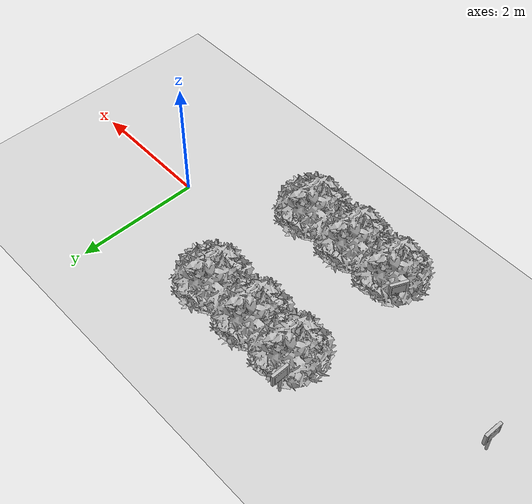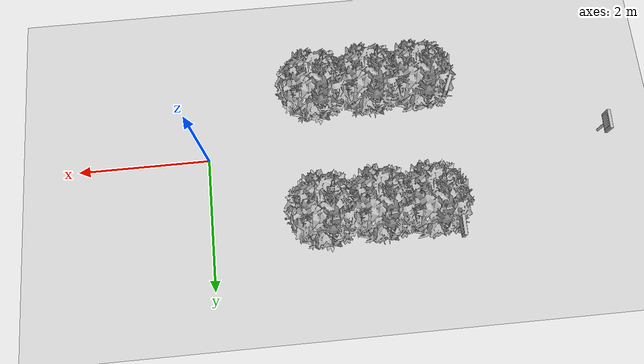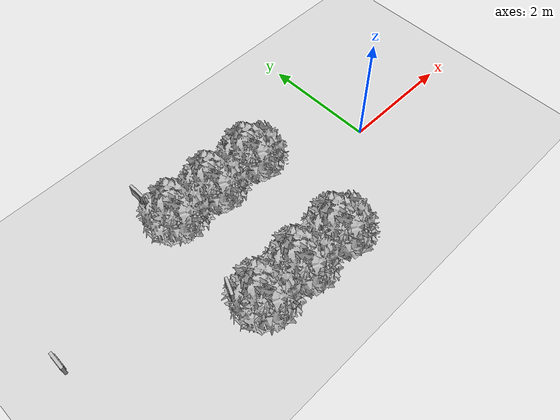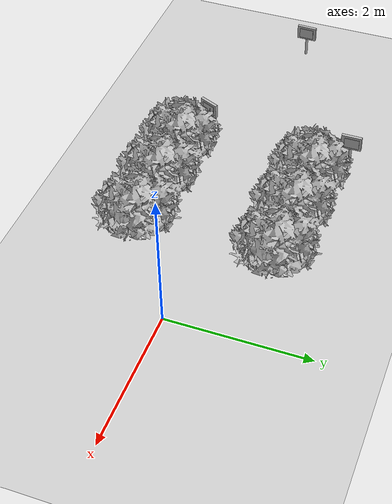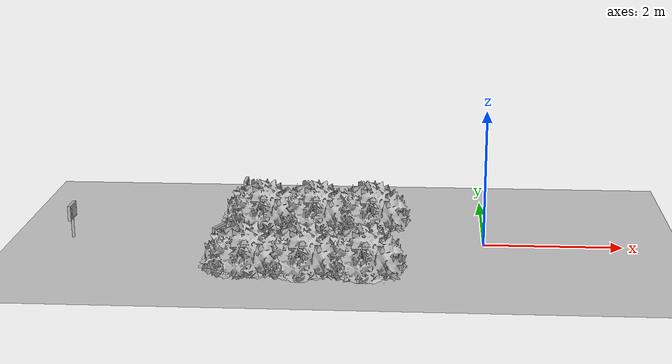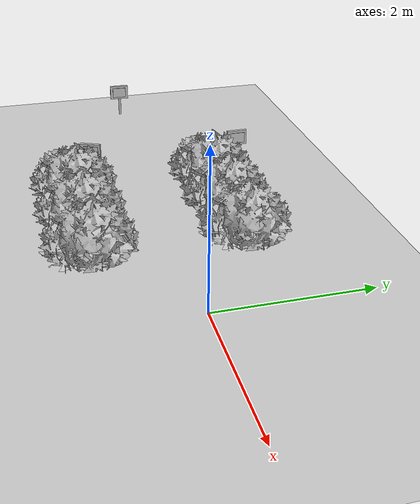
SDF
<sdf version="1.7">
 <world name="default">
  <model name="ground_plane">
   <static>1</static>
   <link name="link">
    <collision name="collision">
     <geometry><plane><normal>0 0 1</normal><size>100 100</size></plane></geometry>
     <surface><friction><ode><mu>100</mu><mu2>50</mu2></ode></friction></surface>
    </collision>
    <visual name="visual">
     <cast_shadows>0</cast_shadows>
     <geometry><plane><normal>0 0 1</normal><size>100 100</size></plane></geometry>
     <material>
      <script><uri>file://media/materials/scripts/gazebo.material</uri><name>Gazebo/Grey</name></script>
     </material>
    </visual>
   </link>
  </model>
  <model name="abbfre_1">
   <link name="link_0">
    <inertial>
     <mass>1</mass>
     <inertia>
      <ixx>0.166667</ixx>
      <ixy>0</ixy>
      <ixz>0</ixz>
      <iyy>0.166667</iyy>
      <iyz>0</iyz>
      <izz>0.166667</izz>
     </inertia>
    </inertial>
    <pose>0 0 -0 1.60917 -0 0</pose>
    <visual name="visual">
     <geometry><mesh><uri>model://abbfre/meshes/arbufres.obj</uri><scale>1 1 1</scale></mesh></geometry>
    </visual>
    <collision name="collision">
     <geometry><mesh><uri>model://abbfre/meshes/arbufres.obj</uri><scale>1 1 1</scale></mesh></geometry>
     <surface>
      <friction>
       <ode><mu>1</mu><mu2>1</mu2><fdir1>0 0 0</fdir1><slip1>0</slip1><slip2>0</slip2></ode>
       <torsional>
        <coefficient>1</coefficient>
        <patch_radius>0</patch_radius>
        <surface_radius>0</surface_radius>
        <use_patch_radius>1</use_patch_radius>
        <ode><slip>0</slip></ode>
       </torsional>
      </friction>
      <bounce><restitution_coefficient>0</restitution_coefficient><threshold>1e+06</threshold></bounce>
      <contact>
       <collide_without_contact>0</collide_without_contact>
       <collide_without_contact_bitmask>1</collide_without_contact_bitmask>
       <collide_bitmask>1</collide_bitmask>
       <ode>
        <soft_cfm>0</soft_cfm>
        <soft_erp>0.2</soft_erp>
        <kp>1e+13</kp>
        <kd>1</kd>
        <max_vel>0.01</max_vel>
        <min_depth>0</min_depth>
       </ode>
       <bullet>
        <split_impulse>1</split_impulse>
        <split_impulse_penetration_threshold>-0.01</split_impulse_penetration_threshold>
        <soft_cfm>0</soft_cfm>
        <soft_erp>0.2</soft_erp>
        <kp>1e+13</kp>
        <kd>1</kd>
       </bullet>
      </contact>
     </surface>
    </collision>
   </link>
   <static>1</static>
   <pose>-2.51808 1.05435 0 0 -0 0</pose>
  </model>
  <model name="abbfre_3">
   <link name="link_0">
    <inertial>
     <mass>1</mass>
     <inertia>
      <ixx>0.166667</ixx>
      <ixy>0</ixy>
      <ixz>0</ixz>
      <iyy>0.166667</iyy>
      <iyz>0</iyz>
      <izz>0.166667</izz>
     </inertia>
    </inertial>
    <pose>0 0 -0 1.60917 -0 0</pose>
    <visual name="visual">
     <geometry><mesh><uri>model://abbfre/meshes/arbufres.obj</uri><scale>1 1 1</scale></mesh></geometry>
    </visual>
    <collision name="collision">
     <geometry><mesh><uri>model://abbfre/meshes/arbufres.obj</uri><scale>1 1 1</scale></mesh></geometry>
     <surface>
      <friction>
       <ode><mu>1</mu><mu2>1</mu2><fdir1>0 0 0</fdir1><slip1>0</slip1><slip2>0</slip2></ode>
       <torsional>
        <coefficient>1</coefficient>
        <patch_radius>0</patch_radius>
        <surface_radius>0</surface_radius>
        <use_patch_radius>1</use_patch_radius>
        <ode><slip>0</slip></ode>
       </torsional>
      </friction>
      <bounce><restitution_coefficient>0</restitution_coefficient><threshold>1e+06</threshold></bounce>
      <contact>
       <collide_without_contact>0</collide_without_contact>
       <collide_without_contact_bitmask>1</collide_without_contact_bitmask>
       <collide_bitmask>1</collide_bitmask>
       <ode>
        <soft_cfm>0</soft_cfm>
        <soft_erp>0.2</soft_erp>
        <kp>1e+13</kp>
        <kd>1</kd>
        <max_vel>0.01</max_vel>
        <min_depth>0</min_depth>
       </ode>
       <bullet>
        <split_impulse>1</split_impulse>
        <split_impulse_penetration_threshold>-0.01</split_impulse_penetration_threshold>
        <soft_cfm>0</soft_cfm>
        <soft_erp>0.2</soft_erp>
        <kp>1e+13</kp>
        <kd>1</kd>
       </bullet>
      </contact>
     </surface>
    </collision>
   </link>
   <static>1</static>
   <pose>-2.52739 -0.955458 0 0 -0 0</pose>
  </model>
  <model name="letrero_riego_1">
   <link name="link_0">
    <inertial>
     <mass>0.0543151</mass>
     <inertia>
      <ixx>4.90351e-06</ixx>
      <ixy>0</ixy>
      <ixz>0</ixz>
      <iyy>4.90351e-06</iyy>
      <iyz>0</iyz>
      <izz>1.12837e-07</izz>
     </inertia>
    </inertial>
    <pose>0.002515 0.005109 0.153562 0 -0 0</pose>
    <visual name="visual">
     <geometry><cylinder><radius>0.0203836</radius><length>0.327243</length></cylinder></geometry>
     <material>
      <lighting>1</lighting>
      <script>
       <uri>model://letrero_riego/madera/scripts</uri>
       <uri>model://letrero_riego/madera/textures</uri>
       <name>textur/madera</name>
      </script>
      <shader type="pixel"/>
      <emissive>0 0 0 1</emissive>
     </material>
    </visual>
    <collision name="collision">
     <geometry><cylinder><radius>0.020384</radius><length>0.327243</length></cylinder></geometry>
     <surface>
      <friction>
       <ode><mu>1</mu><mu2>1</mu2><fdir1>0 0 0</fdir1><slip1>0</slip1><slip2>0</slip2></ode>
       <torsional>
        <coefficient>1</coefficient>
        <patch_radius>0</patch_radius>
        <surface_radius>0</surface_radius>
        <use_patch_radius>1</use_patch_radius>
        <ode><slip>0</slip></ode>
       </torsional>
      </friction>
      <bounce><restitution_coefficient>0</restitution_coefficient><threshold>1e+06</threshold></bounce>
      <contact>
       <collide_without_contact>0</collide_without_contact>
       <collide_without_contact_bitmask>1</collide_without_contact_bitmask>
       <collide_bitmask>1</collide_bitmask>
       <ode>
        <soft_cfm>0</soft_cfm>
        <soft_erp>0.2</soft_erp>
        <kp>1e+13</kp>
        <kd>1</kd>
        <max_vel>0.01</max_vel>
        <min_depth>0</min_depth>
       </ode>
       <bullet>
        <split_impulse>1</split_impulse>
        <split_impulse_penetration_threshold>-0.01</split_impulse_penetration_threshold>
        <soft_cfm>0</soft_cfm>
        <soft_erp>0.2</soft_erp>
        <kp>1e+13</kp>
        <kd>1</kd>
       </bullet>
      </contact>
     </surface>
    </collision>
   </link>
   <link name="link_1">
    <inertial>
     <mass>0.00299633</mass>
     <inertia>
      <ixx>1.27855e-05</ixx>
      <ixy>0</ixy>
      <ixz>0</ixz>
      <iyy>3.42923e-05</iyy>
      <iyz>0</iyz>
      <izz>2.25402e-05</izz>
     </inertia>
    </inertial>
    <pose>-0.001542 0.002452 0.422031 0 -0 0</pose>
    <visual name="visual">
     <geometry><box><size>0.296988 0.04549 0.221665</size></box></geometry>
     <material>
      <lighting>1</lighting>
      <script>
       <uri>model://letrero_riego/madera/scripts</uri>
       <uri>model://letrero_riego/madera/textures</uri>
       <name>textur/madera</name>
      </script>
      <shader type="pixel"/>
      <emissive>0 0 0 1</emissive>
     </material>
    </visual>
    <collision name="collision">
     <geometry><box><size>0.296988 0.04549 0.221665</size></box></geometry>
     <surface>
      <friction>
       <ode><mu>1</mu><mu2>1</mu2><fdir1>0 0 0</fdir1><slip1>0</slip1><slip2>0</slip2></ode>
       <torsional>
        <coefficient>1</coefficient>
        <patch_radius>0</patch_radius>
        <surface_radius>0</surface_radius>
        <use_patch_radius>1</use_patch_radius>
        <ode><slip>0</slip></ode>
       </torsional>
      </friction>
      <bounce><restitution_coefficient>0</restitution_coefficient><threshold>1e+06</threshold></bounce>
      <contact>
       <collide_without_contact>0</collide_without_contact>
       <collide_without_contact_bitmask>1</collide_without_contact_bitmask>
       <collide_bitmask>1</collide_bitmask>
       <ode>
        <soft_cfm>0</soft_cfm>
        <soft_erp>0.2</soft_erp>
        <kp>1e+13</kp>
        <kd>1</kd>
        <max_vel>0.01</max_vel>
        <min_depth>0</min_depth>
       </ode>
       <bullet>
        <split_impulse>1</split_impulse>
        <split_impulse_penetration_threshold>-0.01</split_impulse_penetration_threshold>
        <soft_cfm>0</soft_cfm>
        <soft_erp>0.2</soft_erp>
        <kp>1e+13</kp>
        <kd>1</kd>
       </bullet>
      </contact>
     </surface>
    </collision>
   </link>
   <link name="link_2">
    <inertial>
     <mass>0.00173577</mass>
     <inertia>
      <ixx>4.23206e-06</ixx>
      <ixy>0</ixy>
      <ixz>0</ixz>
      <iyy>1.03921e-05</iyy>
      <iyz>0</iyz>
      <izz>7.37287e-06</izz>
     </inertia>
    </inertial>
    <pose>-0.010225 0.002657 0.421501 0 -0 0</pose>
    <visual name="visual">
     <geometry><box><size>0.216284 0.064749 0.15832</size></box></geometry>
     <material>
      <lighting>1</lighting>
      <script>
       <uri>model://letrero_riego/materials/scripts</uri>
       <uri>model://letrero_riego/materials/textures</uri>
       <name>textur/riego</name>
      </script>
      <shader type="pixel"/>
      <emissive>0 0 0 1</emissive>
     </material>
    </visual>
    <collision name="collision">
     <geometry><box><size>0.216284 0.064749 0.15832</size></box></geometry>
     <surface>
      <friction>
       <ode><mu>1</mu><mu2>1</mu2><fdir1>0 0 0</fdir1><slip1>0</slip1><slip2>0</slip2></ode>
       <torsional>
        <coefficient>1</coefficient>
        <patch_radius>0</patch_radius>
        <surface_radius>0</surface_radius>
        <use_patch_radius>1</use_patch_radius>
        <ode><slip>0</slip></ode>
       </torsional>
      </friction>
      <bounce><restitution_coefficient>0</restitution_coefficient><threshold>1e+06</threshold></bounce>
      <contact>
       <collide_without_contact>0</collide_without_contact>
       <collide_without_contact_bitmask>1</collide_without_contact_bitmask>
       <collide_bitmask>1</collide_bitmask>
       <ode>
        <soft_cfm>0</soft_cfm>
        <soft_erp>0.2</soft_erp>
        <kp>1e+13</kp>
        <kd>1</kd>
        <max_vel>0.01</max_vel>
        <min_depth>0</min_depth>
       </ode>
       <bullet>
        <split_impulse>1</split_impulse>
        <split_impulse_penetration_threshold>-0.01</split_impulse_penetration_threshold>
        <soft_cfm>0</soft_cfm>
        <soft_erp>0.2</soft_erp>
        <kp>1e+13</kp>
        <kd>1</kd>
       </bullet>
      </contact>
     </surface>
    </collision>
   </link>
   <joint name="link_0_JOINT_1" type="fixed">
    <parent>link_0</parent>
    <child>link_1</child>
    <physics>
     <ode><limit><cfm>0</cfm><erp>0.2</erp></limit><suspension><cfm>0</cfm><erp>0.2</erp></suspension></ode>
    </physics>
   </joint>
   <joint name="link_0_JOINT_2" type="fixed">
    <parent>link_0</parent>
    <child>link_2</child>
    <physics>
     <ode><limit><cfm>0</cfm><erp>0.2</erp></limit><suspension><cfm>0</cfm><erp>0.2</erp></suspension></ode>
    </physics>
   </joint>
   <static>1</static>
   <pose>-3.74406 -0.754369 -0.035114 0 0 -1.98871</pose>
  </model>
  <model name="letrero_insecto_1">
   <link name="link_0">
    <inertial>
     <mass>0.00543151</mass>
     <inertia>
      <ixx>4.90351e-06</ixx>
      <ixy>0</ixy>
      <ixz>0</ixz>
      <iyy>4.90351e-06</iyy>
      <iyz>0</iyz>
      <izz>1.12837e-07</izz>
     </inertia>
    </inertial>
    <pose>0.002372 -0.000902 -0.178803 0 -0 0</pose>
    <visual name="visual">
     <geometry><cylinder><radius>0.0203836</radius><length>0.327243</length></cylinder></geometry>
     <material>
      <lighting>1</lighting>
      <script>
       <uri>model://letrero_insecto/madera/scripts</uri>
       <uri>model://letrero_insecto/madera/textures</uri>
       <name>textur/madera</name>
      </script>
      <shader type="pixel"/>
      <emissive>0 0 0 1</emissive>
     </material>
    </visual>
    <collision name="collision">
     <geometry><cylinder><radius>0.020384</radius><length>0.327243</length></cylinder></geometry>
     <surface>
      <friction>
       <ode><mu>1</mu><mu2>1</mu2><fdir1>0 0 0</fdir1><slip1>0</slip1><slip2>0</slip2></ode>
       <torsional>
        <coefficient>1</coefficient>
        <patch_radius>0</patch_radius>
        <surface_radius>0</surface_radius>
        <use_patch_radius>1</use_patch_radius>
        <ode><slip>0</slip></ode>
       </torsional>
      </friction>
      <bounce><restitution_coefficient>0</restitution_coefficient><threshold>1e+06</threshold></bounce>
      <contact>
       <collide_without_contact>0</collide_without_contact>
       <collide_without_contact_bitmask>1</collide_without_contact_bitmask>
       <collide_bitmask>1</collide_bitmask>
       <ode>
        <soft_cfm>0</soft_cfm>
        <soft_erp>0.2</soft_erp>
        <kp>1e+13</kp>
        <kd>1</kd>
        <max_vel>0.01</max_vel>
        <min_depth>0</min_depth>
       </ode>
       <bullet>
        <split_impulse>1</split_impulse>
        <split_impulse_penetration_threshold>-0.01</split_impulse_penetration_threshold>
        <soft_cfm>0</soft_cfm>
        <soft_erp>0.2</soft_erp>
        <kp>1e+13</kp>
        <kd>1</kd>
       </bullet>
      </contact>
     </surface>
    </collision>
   </link>
   <link name="link_1">
    <inertial>
     <mass>0.00299633</mass>
     <inertia>
      <ixx>1.27855e-05</ixx>
      <ixy>0</ixy>
      <ixz>0</ixz>
      <iyy>3.42923e-05</iyy>
      <iyz>0</iyz>
      <izz>2.25402e-05</izz>
     </inertia>
    </inertial>
    <pose>-0.001685 -0.003559 0.089666 0 -0 0</pose>
    <visual name="visual">
     <geometry><box><size>0.296988 0.04549 0.221665</size></box></geometry>
     <material>
      <lighting>1</lighting>
      <script>
       <uri>model://letrero_insecto/madera/scripts</uri>
       <uri>model://letrero_insecto/madera/textures</uri>
       <name>textur/madera</name>
      </script>
      <shader type="pixel"/>
      <emissive>0 0 0 1</emissive>
     </material>
    </visual>
    <collision name="collision">
     <geometry><box><size>0.296988 0.04549 0.221665</size></box></geometry>
     <surface>
      <friction>
       <ode><mu>1</mu><mu2>1</mu2><fdir1>0 0 0</fdir1><slip1>0</slip1><slip2>0</slip2></ode>
       <torsional>
        <coefficient>1</coefficient>
        <patch_radius>0</patch_radius>
        <surface_radius>0</surface_radius>
        <use_patch_radius>1</use_patch_radius>
        <ode><slip>0</slip></ode>
       </torsional>
      </friction>
      <bounce><restitution_coefficient>0</restitution_coefficient><threshold>1e+06</threshold></bounce>
      <contact>
       <collide_without_contact>0</collide_without_contact>
       <collide_without_contact_bitmask>1</collide_without_contact_bitmask>
       <collide_bitmask>1</collide_bitmask>
       <ode>
        <soft_cfm>0</soft_cfm>
        <soft_erp>0.2</soft_erp>
        <kp>1e+13</kp>
        <kd>1</kd>
        <max_vel>0.01</max_vel>
        <min_depth>0</min_depth>
       </ode>
       <bullet>
        <split_impulse>1</split_impulse>
        <split_impulse_penetration_threshold>-0.01</split_impulse_penetration_threshold>
        <soft_cfm>0</soft_cfm>
        <soft_erp>0.2</soft_erp>
        <kp>1e+13</kp>
        <kd>1</kd>
       </bullet>
      </contact>
     </surface>
    </collision>
   </link>
   <link name="link_2">
    <inertial>
     <mass>0.00219695</mass>
     <inertia>
      <ixx>5.34209e-06</ixx>
      <ixy>0</ixy>
      <ixz>0</ixz>
      <iyy>1.31531e-05</iyy>
      <iyz>0</iyz>
      <izz>9.31738e-06</izz>
     </inertia>
    </inertial>
    <pose>-0.001275 -0.005928 0.089136 0 -0 0</pose>
    <visual name="visual">
     <geometry><box><size>0.216284 0.06414 0.15832</size></box></geometry>
     <material>
      <lighting>1</lighting>
      <script>
       <uri>model://letrero_insecto/materials/scripts</uri>
       <uri>model://letrero_insecto/materials/textures</uri>
       <name>textur/insec</name>
      </script>
      <shader type="pixel"/>
      <emissive>0 0 0 1</emissive>
     </material>
    </visual>
    <collision name="collision">
     <geometry><box><size>0.216284 0.06414 0.15832</size></box></geometry>
     <surface>
      <friction>
       <ode><mu>1</mu><mu2>1</mu2><fdir1>0 0 0</fdir1><slip1>0</slip1><slip2>0</slip2></ode>
       <torsional>
        <coefficient>1</coefficient>
        <patch_radius>0</patch_radius>
        <surface_radius>0</surface_radius>
        <use_patch_radius>1</use_patch_radius>
        <ode><slip>0</slip></ode>
       </torsional>
      </friction>
      <bounce><restitution_coefficient>0</restitution_coefficient><threshold>1e+06</threshold></bounce>
      <contact>
       <collide_without_contact>0</collide_without_contact>
       <collide_without_contact_bitmask>1</collide_without_contact_bitmask>
       <collide_bitmask>1</collide_bitmask>
       <ode>
        <soft_cfm>0</soft_cfm>
        <soft_erp>0.2</soft_erp>
        <kp>1e+13</kp>
        <kd>1</kd>
        <max_vel>0.01</max_vel>
        <min_depth>0</min_depth>
       </ode>
       <bullet>
        <split_impulse>1</split_impulse>
        <split_impulse_penetration_threshold>-0.01</split_impulse_penetration_threshold>
        <soft_cfm>0</soft_cfm>
        <soft_erp>0.2</soft_erp>
        <kp>1e+13</kp>
        <kd>1</kd>
       </bullet>
      </contact>
     </surface>
    </collision>
   </link>
   <joint name="link_0_JOINT_1" type="fixed">
    <parent>link_0</parent>
    <child>link_1</child>
    <physics>
     <ode><limit><cfm>0</cfm><erp>0.2</erp></limit><suspension><cfm>0</cfm><erp>0.2</erp></suspension></ode>
    </physics>
   </joint>
   <joint name="link_0_JOINT_2" type="fixed">
    <parent>link_0</parent>
    <child>link_2</child>
    <physics>
     <ode><limit><cfm>0</cfm><erp>0.2</erp></limit><suspension><cfm>0</cfm><erp>0.2</erp></suspension></ode>
    </physics>
   </joint>
   <static>1</static>
   <pose>-6.06655 0.056382 0.307396 0 -0 1.54302</pose>
  </model>
  <model name="letrero_riego_6">
   <link name="link_0">
    <inertial>
     <mass>0.0543151</mass>
     <inertia>
      <ixx>4.90351e-06</ixx>
      <ixy>0</ixy>
      <ixz>0</ixz>
      <iyy>4.90351e-06</iyy>
      <iyz>0</iyz>
      <izz>1.12837e-07</izz>
     </inertia>
    </inertial>
    <pose>0.002515 0.005109 0.153562 0 -0 0</pose>
    <visual name="visual">
     <geometry><cylinder><radius>0.0203836</radius><length>0.327243</length></cylinder></geometry>
     <material>
      <lighting>1</lighting>
      <script>
       <uri>model://letrero_riego/madera/scripts</uri>
       <uri>model://letrero_riego/madera/textures</uri>
       <name>textur/madera</name>
      </script>
      <shader type="pixel"/>
      <emissive>0 0 0 1</emissive>
     </material>
    </visual>
    <collision name="collision">
     <geometry><cylinder><radius>0.020384</radius><length>0.327243</length></cylinder></geometry>
     <surface>
      <friction>
       <ode><mu>1</mu><mu2>1</mu2><fdir1>0 0 0</fdir1><slip1>0</slip1><slip2>0</slip2></ode>
       <torsional>
        <coefficient>1</coefficient>
        <patch_radius>0</patch_radius>
        <surface_radius>0</surface_radius>
        <use_patch_radius>1</use_patch_radius>
        <ode><slip>0</slip></ode>
       </torsional>
      </friction>
      <bounce><restitution_coefficient>0</restitution_coefficient><threshold>1e+06</threshold></bounce>
      <contact>
       <collide_without_contact>0</collide_without_contact>
       <collide_without_contact_bitmask>1</collide_without_contact_bitmask>
       <collide_bitmask>1</collide_bitmask>
       <ode>
        <soft_cfm>0</soft_cfm>
        <soft_erp>0.2</soft_erp>
        <kp>1e+13</kp>
        <kd>1</kd>
        <max_vel>0.01</max_vel>
        <min_depth>0</min_depth>
       </ode>
       <bullet>
        <split_impulse>1</split_impulse>
        <split_impulse_penetration_threshold>-0.01</split_impulse_penetration_threshold>
        <soft_cfm>0</soft_cfm>
        <soft_erp>0.2</soft_erp>
        <kp>1e+13</kp>
        <kd>1</kd>
       </bullet>
      </contact>
     </surface>
    </collision>
   </link>
   <link name="link_1">
    <inertial>
     <mass>0.00299633</mass>
     <inertia>
      <ixx>1.27855e-05</ixx>
      <ixy>0</ixy>
      <ixz>0</ixz>
      <iyy>3.42923e-05</iyy>
      <iyz>0</iyz>
      <izz>2.25402e-05</izz>
     </inertia>
    </inertial>
    <pose>-0.001542 0.002452 0.422031 0 -0 0</pose>
    <visual name="visual">
     <geometry><box><size>0.296988 0.04549 0.221665</size></box></geometry>
     <material>
      <lighting>1</lighting>
      <script>
       <uri>model://letrero_riego/madera/scripts</uri>
       <uri>model://letrero_riego/madera/textures</uri>
       <name>textur/madera</name>
      </script>
      <shader type="pixel"/>
      <emissive>0 0 0 1</emissive>
     </material>
    </visual>
    <collision name="collision">
     <geometry><box><size>0.296988 0.04549 0.221665</size></box></geometry>
     <surface>
      <friction>
       <ode><mu>1</mu><mu2>1</mu2><fdir1>0 0 0</fdir1><slip1>0</slip1><slip2>0</slip2></ode>
       <torsional>
        <coefficient>1</coefficient>
        <patch_radius>0</patch_radius>
        <surface_radius>0</surface_radius>
        <use_patch_radius>1</use_patch_radius>
        <ode><slip>0</slip></ode>
       </torsional>
      </friction>
      <bounce><restitution_coefficient>0</restitution_coefficient><threshold>1e+06</threshold></bounce>
      <contact>
       <collide_without_contact>0</collide_without_contact>
       <collide_without_contact_bitmask>1</collide_without_contact_bitmask>
       <collide_bitmask>1</collide_bitmask>
       <ode>
        <soft_cfm>0</soft_cfm>
        <soft_erp>0.2</soft_erp>
        <kp>1e+13</kp>
        <kd>1</kd>
        <max_vel>0.01</max_vel>
        <min_depth>0</min_depth>
       </ode>
       <bullet>
        <split_impulse>1</split_impulse>
        <split_impulse_penetration_threshold>-0.01</split_impulse_penetration_threshold>
        <soft_cfm>0</soft_cfm>
        <soft_erp>0.2</soft_erp>
        <kp>1e+13</kp>
        <kd>1</kd>
       </bullet>
      </contact>
     </surface>
    </collision>
   </link>
   <link name="link_2">
    <inertial>
     <mass>0.00173577</mass>
     <inertia>
      <ixx>4.23206e-06</ixx>
      <ixy>0</ixy>
      <ixz>0</ixz>
      <iyy>1.03921e-05</iyy>
      <iyz>0</iyz>
      <izz>7.37287e-06</izz>
     </inertia>
    </inertial>
    <pose>-0.010225 0.002657 0.421501 0 -0 0</pose>
    <visual name="visual">
     <geometry><box><size>0.216284 0.064749 0.15832</size></box></geometry>
     <material>
      <lighting>1</lighting>
      <script>
       <uri>model://letrero_riego/materials/scripts</uri>
       <uri>model://letrero_riego/materials/textures</uri>
       <name>textur/riego</name>
      </script>
      <shader type="pixel"/>
      <emissive>0 0 0 1</emissive>
     </material>
    </visual>
    <collision name="collision">
     <geometry><box><size>0.216284 0.064749 0.15832</size></box></geometry>
     <surface>
      <friction>
       <ode><mu>1</mu><mu2>1</mu2><fdir1>0 0 0</fdir1><slip1>0</slip1><slip2>0</slip2></ode>
       <torsional>
        <coefficient>1</coefficient>
        <patch_radius>0</patch_radius>
        <surface_radius>0</surface_radius>
        <use_patch_radius>1</use_patch_radius>
        <ode><slip>0</slip></ode>
       </torsional>
      </friction>
      <bounce><restitution_coefficient>0</restitution_coefficient><threshold>1e+06</threshold></bounce>
      <contact>
       <collide_without_contact>0</collide_without_contact>
       <collide_without_contact_bitmask>1</collide_without_contact_bitmask>
       <collide_bitmask>1</collide_bitmask>
       <ode>
        <soft_cfm>0</soft_cfm>
        <soft_erp>0.2</soft_erp>
        <kp>1e+13</kp>
        <kd>1</kd>
        <max_vel>0.01</max_vel>
        <min_depth>0</min_depth>
       </ode>
       <bullet>
        <split_impulse>1</split_impulse>
        <split_impulse_penetration_threshold>-0.01</split_impulse_penetration_threshold>
        <soft_cfm>0</soft_cfm>
        <soft_erp>0.2</soft_erp>
        <kp>1e+13</kp>
        <kd>1</kd>
       </bullet>
      </contact>
     </surface>
    </collision>
   </link>
   <joint name="link_0_JOINT_1" type="fixed">
    <parent>link_0</parent>
    <child>link_1</child>
    <physics>
     <ode><limit><cfm>0</cfm><erp>0.2</erp></limit><suspension><cfm>0</cfm><erp>0.2</erp></suspension></ode>
    </physics>
   </joint>
   <joint name="link_0_JOINT_2" type="fixed">
    <parent>link_0</parent>
    <child>link_2</child>
    <physics>
     <ode><limit><cfm>0</cfm><erp>0.2</erp></limit><suspension><cfm>0</cfm><erp>0.2</erp></suspension></ode>
    </physics>
   </joint>
   <static>1</static>
   <pose>-3.66529 1.43648 -0.020092 0 0 -1.56802</pose>
  </model>
 </world>
</sdf>
